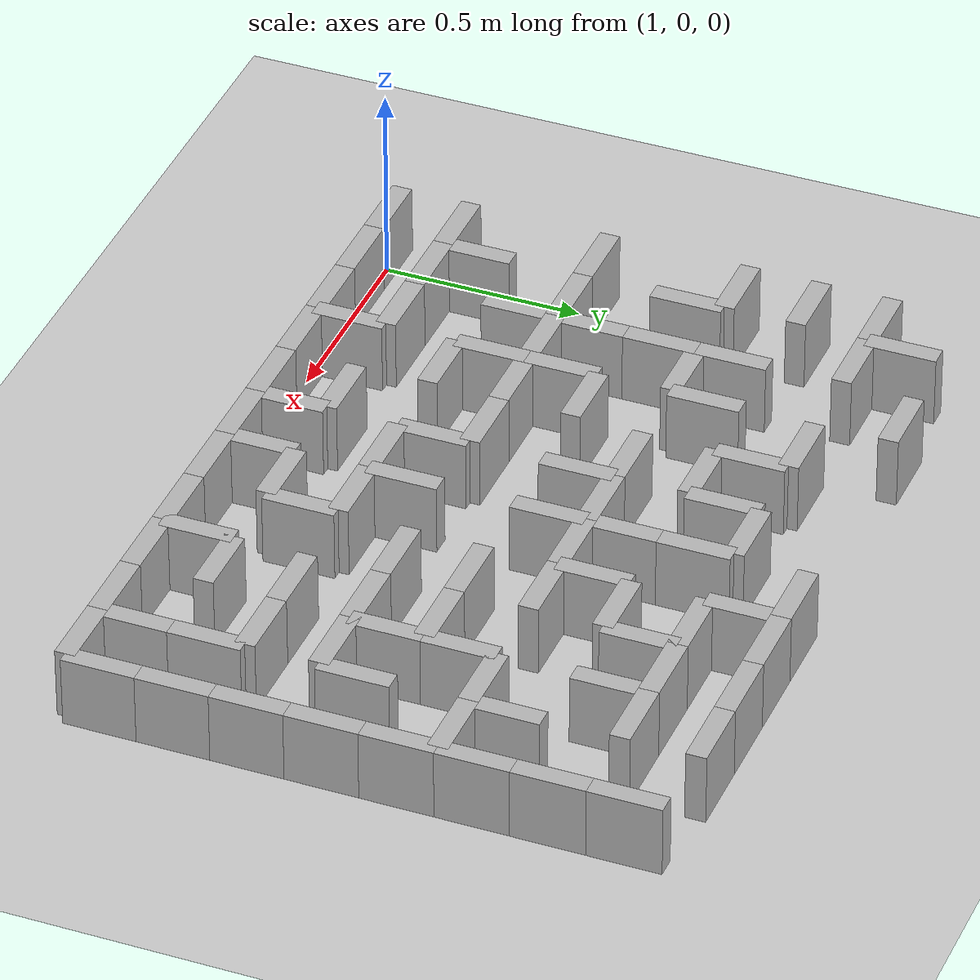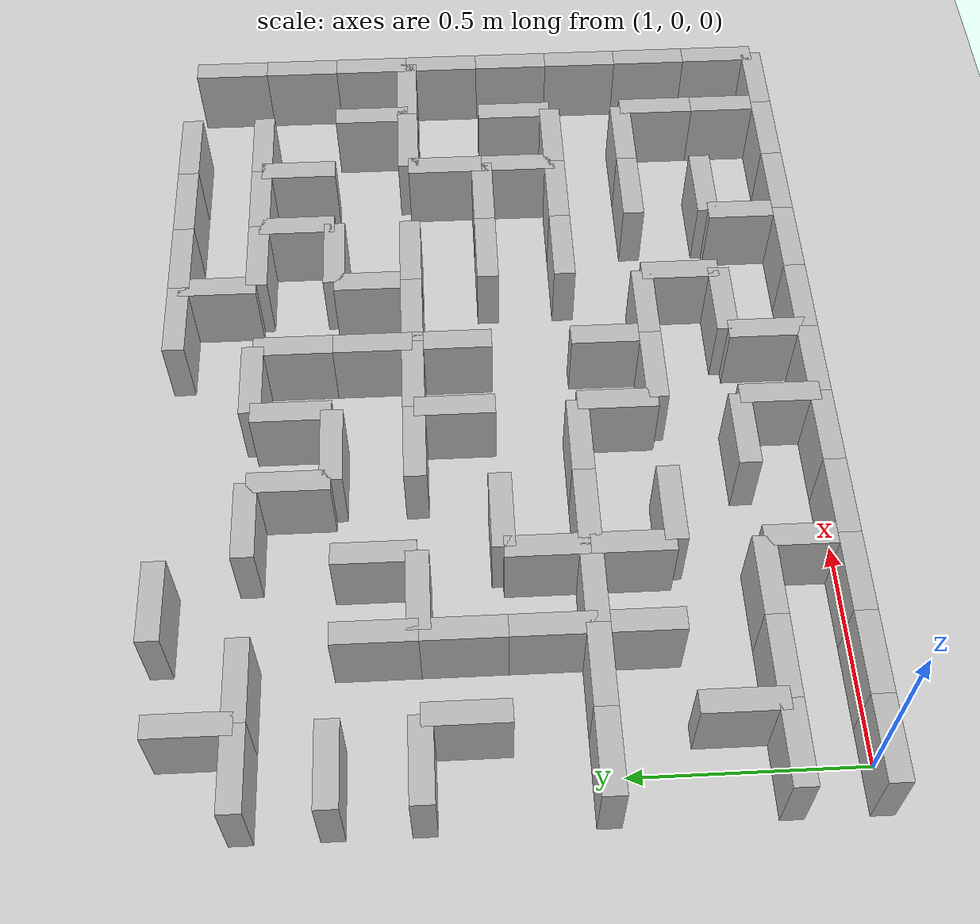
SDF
<sdf version="1.6">
 <world name="default">
  <model name="ground_plane">
   <static>1</static>
   <link name="link">
    <collision name="collision">
     <geometry><plane><normal>0 0 1</normal><size>100 100</size></plane></geometry>
     <surface><friction><ode><mu>100</mu><mu2>50</mu2></ode></friction></surface>
    </collision>
    <visual name="visual">
     <cast_shadows>0</cast_shadows>
     <geometry><plane><normal>0 0 1</normal><size>100 100</size></plane></geometry>
     <material>
      <script><uri>file://media/materials/scripts/gazebo.material</uri><name>Gazebo/Grey</name></script>
     </material>
    </visual>
   </link>
  </model>
  <model name="labyrinth_wall11">
   <pose>0.990000 0.000000 0.09 0 0 0.000000</pose>
   <link name="link">
    <inertial><mass>3.0</mass></inertial>
    <collision name="collision"><geometry><box><size>0.180 0.050 0.180</size></box></geometry></collision>
    <visual name="visual"><geometry><box><size>0.180 0.050 0.180</size></box></geometry></visual>
   </link>
   <static>true</static>
  </model>
  <model name="labyrinth_wall13">
   <pose>1.170000 0.000000 0.09 0 0 0.000000</pose>
   <link name="link">
    <inertial><mass>3.0</mass></inertial>
    <collision name="collision"><geometry><box><size>0.180 0.050 0.180</size></box></geometry></collision>
    <visual name="visual"><geometry><box><size>0.180 0.050 0.180</size></box></geometry></visual>
   </link>
   <static>true</static>
  </model>
  <model name="labyrinth_wall15">
   <pose>1.350000 0.000000 0.09 0 0 0.000000</pose>
   <link name="link">
    <inertial><mass>3.0</mass></inertial>
    <collision name="collision"><geometry><box><size>0.180 0.050 0.180</size></box></geometry></collision>
    <visual name="visual"><geometry><box><size>0.180 0.050 0.180</size></box></geometry></visual>
   </link>
   <static>true</static>
  </model>
  <model name="labyrinth_wall16">
   <pose>1.440000 0.090000 0.09 0 0 1.570796</pose>
   <link name="link">
    <inertial><mass>3.0</mass></inertial>
    <collision name="collision"><geometry><box><size>0.180 0.050 0.180</size></box></geometry></collision>
    <visual name="visual"><geometry><box><size>0.180 0.050 0.180</size></box></geometry></visual>
   </link>
   <static>true</static>
  </model>
  <model name="labyrinth_wall17">
   <pose>1.530000 0.000000 0.09 0 0 0.000000</pose>
   <link name="link">
    <inertial><mass>3.0</mass></inertial>
    <collision name="collision"><geometry><box><size>0.180 0.050 0.180</size></box></geometry></collision>
    <visual name="visual"><geometry><box><size>0.180 0.050 0.180</size></box></geometry></visual>
   </link>
   <static>true</static>
  </model>
  <model name="labyrinth_wall19">
   <pose>1.710000 0.000000 0.09 0 0 0.000000</pose>
   <link name="link">
    <inertial><mass>3.0</mass></inertial>
    <collision name="collision"><geometry><box><size>0.180 0.050 0.180</size></box></geometry></collision>
    <visual name="visual"><geometry><box><size>0.180 0.050 0.180</size></box></geometry></visual>
   </link>
   <static>true</static>
  </model>
  <model name="labyrinth_wall20">
   <pose>1.800000 0.090000 0.09 0 0 1.570796</pose>
   <link name="link">
    <inertial><mass>3.0</mass></inertial>
    <collision name="collision"><geometry><box><size>0.180 0.050 0.180</size></box></geometry></collision>
    <visual name="visual"><geometry><box><size>0.180 0.050 0.180</size></box></geometry></visual>
   </link>
   <static>true</static>
  </model>
  <model name="labyrinth_wall21">
   <pose>1.890000 0.000000 0.09 0 0 0.000000</pose>
   <link name="link">
    <inertial><mass>3.0</mass></inertial>
    <collision name="collision"><geometry><box><size>0.180 0.050 0.180</size></box></geometry></collision>
    <visual name="visual"><geometry><box><size>0.180 0.050 0.180</size></box></geometry></visual>
   </link>
   <static>true</static>
  </model>
  <model name="labyrinth_wall22">
   <pose>1.980000 0.090000 0.09 0 0 1.570796</pose>
   <link name="link">
    <inertial><mass>3.0</mass></inertial>
    <collision name="collision"><geometry><box><size>0.180 0.050 0.180</size></box></geometry></collision>
    <visual name="visual"><geometry><box><size>0.180 0.050 0.180</size></box></geometry></visual>
   </link>
   <static>true</static>
  </model>
  <model name="labyrinth_wall23">
   <pose>2.070000 0.000000 0.09 0 0 0.000000</pose>
   <link name="link">
    <inertial><mass>3.0</mass></inertial>
    <collision name="collision"><geometry><box><size>0.180 0.050 0.180</size></box></geometry></collision>
    <visual name="visual"><geometry><box><size>0.180 0.050 0.180</size></box></geometry></visual>
   </link>
   <static>true</static>
  </model>
  <model name="labyrinth_wall25">
   <pose>2.250000 0.000000 0.09 0 0 0.000000</pose>
   <link name="link">
    <inertial><mass>3.0</mass></inertial>
    <collision name="collision"><geometry><box><size>0.180 0.050 0.180</size></box></geometry></collision>
    <visual name="visual"><geometry><box><size>0.180 0.050 0.180</size></box></geometry></visual>
   </link>
   <static>true</static>
  </model>
  <model name="labyrinth_wall26">
   <pose>2.340000 0.090000 0.09 0 0 1.570796</pose>
   <link name="link">
    <inertial><mass>3.0</mass></inertial>
    <collision name="collision"><geometry><box><size>0.180 0.050 0.180</size></box></geometry></collision>
    <visual name="visual"><geometry><box><size>0.180 0.050 0.180</size></box></geometry></visual>
   </link>
   <static>true</static>
  </model>
  <model name="labyrinth_wall27">
   <pose>2.430000 0.000000 0.09 0 0 0.000000</pose>
   <link name="link">
    <inertial><mass>3.0</mass></inertial>
    <collision name="collision"><geometry><box><size>0.180 0.050 0.180</size></box></geometry></collision>
    <visual name="visual"><geometry><box><size>0.180 0.050 0.180</size></box></geometry></visual>
   </link>
   <static>true</static>
  </model>
  <model name="labyrinth_wall29">
   <pose>2.610000 0.000000 0.09 0 0 0.000000</pose>
   <link name="link">
    <inertial><mass>3.0</mass></inertial>
    <collision name="collision"><geometry><box><size>0.180 0.050 0.180</size></box></geometry></collision>
    <visual name="visual"><geometry><box><size>0.180 0.050 0.180</size></box></geometry></visual>
   </link>
   <static>true</static>
  </model>
  <model name="labyrinth_wall30">
   <pose>2.700000 0.090000 0.09 0 0 1.570796</pose>
   <link name="link">
    <inertial><mass>3.0</mass></inertial>
    <collision name="collision"><geometry><box><size>0.180 0.050 0.180</size></box></geometry></collision>
    <visual name="visual"><geometry><box><size>0.180 0.050 0.180</size></box></geometry></visual>
   </link>
   <static>true</static>
  </model>
  <model name="labyrinth_wall31">
   <pose>2.790000 0.000000 0.09 0 0 0.000000</pose>
   <link name="link">
    <inertial><mass>3.0</mass></inertial>
    <collision name="collision"><geometry><box><size>0.180 0.050 0.180</size></box></geometry></collision>
    <visual name="visual"><geometry><box><size>0.180 0.050 0.180</size></box></geometry></visual>
   </link>
   <static>true</static>
  </model>
  <model name="labyrinth_wall32">
   <pose>2.880000 0.090000 0.09 0 0 1.570796</pose>
   <link name="link">
    <inertial><mass>3.0</mass></inertial>
    <collision name="collision"><geometry><box><size>0.180 0.050 0.180</size></box></geometry></collision>
    <visual name="visual"><geometry><box><size>0.180 0.050 0.180</size></box></geometry></visual>
   </link>
   <static>true</static>
  </model>
  <model name="labyrinth_wall44">
   <pose>0.990000 0.180000 0.09 0 0 0.000000</pose>
   <link name="link">
    <inertial><mass>3.0</mass></inertial>
    <collision name="collision"><geometry><box><size>0.180 0.050 0.180</size></box></geometry></collision>
    <visual name="visual"><geometry><box><size>0.180 0.050 0.180</size></box></geometry></visual>
   </link>
   <static>true</static>
  </model>
  <model name="labyrinth_wall45">
   <pose>1.080000 0.270000 0.09 0 0 1.570796</pose>
   <link name="link">
    <inertial><mass>3.0</mass></inertial>
    <collision name="collision"><geometry><box><size>0.180 0.050 0.180</size></box></geometry></collision>
    <visual name="visual"><geometry><box><size>0.180 0.050 0.180</size></box></geometry></visual>
   </link>
   <static>true</static>
  </model>
  <model name="labyrinth_wall46">
   <pose>1.170000 0.180000 0.09 0 0 0.000000</pose>
   <link name="link">
    <inertial><mass>3.0</mass></inertial>
    <collision name="collision"><geometry><box><size>0.180 0.050 0.180</size></box></geometry></collision>
    <visual name="visual"><geometry><box><size>0.180 0.050 0.180</size></box></geometry></visual>
   </link>
   <static>true</static>
  </model>
  <model name="labyrinth_wall48">
   <pose>1.350000 0.180000 0.09 0 0 0.000000</pose>
   <link name="link">
    <inertial><mass>3.0</mass></inertial>
    <collision name="collision"><geometry><box><size>0.180 0.050 0.180</size></box></geometry></collision>
    <visual name="visual"><geometry><box><size>0.180 0.050 0.180</size></box></geometry></visual>
   </link>
   <static>true</static>
  </model>
  <model name="labyrinth_wall52">
   <pose>1.710000 0.180000 0.09 0 0 0.000000</pose>
   <link name="link">
    <inertial><mass>3.0</mass></inertial>
    <collision name="collision"><geometry><box><size>0.180 0.050 0.180</size></box></geometry></collision>
    <visual name="visual"><geometry><box><size>0.180 0.050 0.180</size></box></geometry></visual>
   </link>
   <static>true</static>
  </model>
  <model name="labyrinth_wall56">
   <pose>2.070000 0.180000 0.09 0 0 0.000000</pose>
   <link name="link">
    <inertial><mass>3.0</mass></inertial>
    <collision name="collision"><geometry><box><size>0.180 0.050 0.180</size></box></geometry></collision>
    <visual name="visual"><geometry><box><size>0.180 0.050 0.180</size></box></geometry></visual>
   </link>
   <static>true</static>
  </model>
  <model name="labyrinth_wall57">
   <pose>2.160000 0.270000 0.09 0 0 1.570796</pose>
   <link name="link">
    <inertial><mass>3.0</mass></inertial>
    <collision name="collision"><geometry><box><size>0.180 0.050 0.180</size></box></geometry></collision>
    <visual name="visual"><geometry><box><size>0.180 0.050 0.180</size></box></geometry></visual>
   </link>
   <static>true</static>
  </model>
  <model name="labyrinth_wall60">
   <pose>2.430000 0.180000 0.09 0 0 0.000000</pose>
   <link name="link">
    <inertial><mass>3.0</mass></inertial>
    <collision name="collision"><geometry><box><size>0.180 0.050 0.180</size></box></geometry></collision>
    <visual name="visual"><geometry><box><size>0.180 0.050 0.180</size></box></geometry></visual>
   </link>
   <static>true</static>
  </model>
  <model name="labyrinth_wall63">
   <pose>2.700000 0.270000 0.09 0 0 1.570796</pose>
   <link name="link">
    <inertial><mass>3.0</mass></inertial>
    <collision name="collision"><geometry><box><size>0.180 0.050 0.180</size></box></geometry></collision>
    <visual name="visual"><geometry><box><size>0.180 0.050 0.180</size></box></geometry></visual>
   </link>
   <static>true</static>
  </model>
  <model name="labyrinth_wall65">
   <pose>2.880000 0.270000 0.09 0 0 1.570796</pose>
   <link name="link">
    <inertial><mass>3.0</mass></inertial>
    <collision name="collision"><geometry><box><size>0.180 0.050 0.180</size></box></geometry></collision>
    <visual name="visual"><geometry><box><size>0.180 0.050 0.180</size></box></geometry></visual>
   </link>
   <static>true</static>
  </model>
  <model name="labyrinth_wall80">
   <pose>1.260000 0.450000 0.09 0 0 1.570796</pose>
   <link name="link">
    <inertial><mass>3.0</mass></inertial>
    <collision name="collision"><geometry><box><size>0.180 0.050 0.180</size></box></geometry></collision>
    <visual name="visual"><geometry><box><size>0.180 0.050 0.180</size></box></geometry></visual>
   </link>
   <static>true</static>
  </model>
  <model name="labyrinth_wall82">
   <pose>1.440000 0.450000 0.09 0 0 1.570796</pose>
   <link name="link">
    <inertial><mass>3.0</mass></inertial>
    <collision name="collision"><geometry><box><size>0.180 0.050 0.180</size></box></geometry></collision>
    <visual name="visual"><geometry><box><size>0.180 0.050 0.180</size></box></geometry></visual>
   </link>
   <static>true</static>
  </model>
  <model name="labyrinth_wall83">
   <pose>1.530000 0.360000 0.09 0 0 0.000000</pose>
   <link name="link">
    <inertial><mass>3.0</mass></inertial>
    <collision name="collision"><geometry><box><size>0.180 0.050 0.180</size></box></geometry></collision>
    <visual name="visual"><geometry><box><size>0.180 0.050 0.180</size></box></geometry></visual>
   </link>
   <static>true</static>
  </model>
  <model name="labyrinth_wall86">
   <pose>1.800000 0.450000 0.09 0 0 1.570796</pose>
   <link name="link">
    <inertial><mass>3.0</mass></inertial>
    <collision name="collision"><geometry><box><size>0.180 0.050 0.180</size></box></geometry></collision>
    <visual name="visual"><geometry><box><size>0.180 0.050 0.180</size></box></geometry></visual>
   </link>
   <static>true</static>
  </model>
  <model name="labyrinth_wall87">
   <pose>1.890000 0.360000 0.09 0 0 0.000000</pose>
   <link name="link">
    <inertial><mass>3.0</mass></inertial>
    <collision name="collision"><geometry><box><size>0.180 0.050 0.180</size></box></geometry></collision>
    <visual name="visual"><geometry><box><size>0.180 0.050 0.180</size></box></geometry></visual>
   </link>
   <static>true</static>
  </model>
  <model name="labyrinth_wall88">
   <pose>1.980000 0.450000 0.09 0 0 1.570796</pose>
   <link name="link">
    <inertial><mass>3.0</mass></inertial>
    <collision name="collision"><geometry><box><size>0.180 0.050 0.180</size></box></geometry></collision>
    <visual name="visual"><geometry><box><size>0.180 0.050 0.180</size></box></geometry></visual>
   </link>
   <static>true</static>
  </model>
  <model name="labyrinth_wall89">
   <pose>2.070000 0.360000 0.09 0 0 0.000000</pose>
   <link name="link">
    <inertial><mass>3.0</mass></inertial>
    <collision name="collision"><geometry><box><size>0.180 0.050 0.180</size></box></geometry></collision>
    <visual name="visual"><geometry><box><size>0.180 0.050 0.180</size></box></geometry></visual>
   </link>
   <static>true</static>
  </model>
  <model name="labyrinth_wall93">
   <pose>2.430000 0.360000 0.09 0 0 0.000000</pose>
   <link name="link">
    <inertial><mass>3.0</mass></inertial>
    <collision name="collision"><geometry><box><size>0.180 0.050 0.180</size></box></geometry></collision>
    <visual name="visual"><geometry><box><size>0.180 0.050 0.180</size></box></geometry></visual>
   </link>
   <static>true</static>
  </model>
  <model name="labyrinth_wall95">
   <pose>2.610000 0.360000 0.09 0 0 0.000000</pose>
   <link name="link">
    <inertial><mass>3.0</mass></inertial>
    <collision name="collision"><geometry><box><size>0.180 0.050 0.180</size></box></geometry></collision>
    <visual name="visual"><geometry><box><size>0.180 0.050 0.180</size></box></geometry></visual>
   </link>
   <static>true</static>
  </model>
  <model name="labyrinth_wall98">
   <pose>2.880000 0.450000 0.09 0 0 1.570796</pose>
   <link name="link">
    <inertial><mass>3.0</mass></inertial>
    <collision name="collision"><geometry><box><size>0.180 0.050 0.180</size></box></geometry></collision>
    <visual name="visual"><geometry><box><size>0.180 0.050 0.180</size></box></geometry></visual>
   </link>
   <static>true</static>
  </model>
  <model name="labyrinth_wall110">
   <pose>0.990000 0.540000 0.09 0 0 0.000000</pose>
   <link name="link">
    <inertial><mass>3.0</mass></inertial>
    <collision name="collision"><geometry><box><size>0.180 0.050 0.180</size></box></geometry></collision>
    <visual name="visual"><geometry><box><size>0.180 0.050 0.180</size></box></geometry></visual>
   </link>
   <static>true</static>
  </model>
  <model name="labyrinth_wall112">
   <pose>1.170000 0.540000 0.09 0 0 0.000000</pose>
   <link name="link">
    <inertial><mass>3.0</mass></inertial>
    <collision name="collision"><geometry><box><size>0.180 0.050 0.180</size></box></geometry></collision>
    <visual name="visual"><geometry><box><size>0.180 0.050 0.180</size></box></geometry></visual>
   </link>
   <static>true</static>
  </model>
  <model name="labyrinth_wall113">
   <pose>1.260000 0.630000 0.09 0 0 1.570796</pose>
   <link name="link">
    <inertial><mass>3.0</mass></inertial>
    <collision name="collision"><geometry><box><size>0.180 0.050 0.180</size></box></geometry></collision>
    <visual name="visual"><geometry><box><size>0.180 0.050 0.180</size></box></geometry></visual>
   </link>
   <static>true</static>
  </model>
  <model name="labyrinth_wall114">
   <pose>1.350000 0.540000 0.09 0 0 0.000000</pose>
   <link name="link">
    <inertial><mass>3.0</mass></inertial>
    <collision name="collision"><geometry><box><size>0.180 0.050 0.180</size></box></geometry></collision>
    <visual name="visual"><geometry><box><size>0.180 0.050 0.180</size></box></geometry></visual>
   </link>
   <static>true</static>
  </model>
  <model name="labyrinth_wall115">
   <pose>1.440000 0.630000 0.09 0 0 1.570796</pose>
   <link name="link">
    <inertial><mass>3.0</mass></inertial>
    <collision name="collision"><geometry><box><size>0.180 0.050 0.180</size></box></geometry></collision>
    <visual name="visual"><geometry><box><size>0.180 0.050 0.180</size></box></geometry></visual>
   </link>
   <static>true</static>
  </model>
  <model name="labyrinth_wall116">
   <pose>1.530000 0.540000 0.09 0 0 0.000000</pose>
   <link name="link">
    <inertial><mass>3.0</mass></inertial>
    <collision name="collision"><geometry><box><size>0.180 0.050 0.180</size></box></geometry></collision>
    <visual name="visual"><geometry><box><size>0.180 0.050 0.180</size></box></geometry></visual>
   </link>
   <static>true</static>
  </model>
  <model name="labyrinth_wall118">
   <pose>1.710000 0.540000 0.09 0 0 0.000000</pose>
   <link name="link">
    <inertial><mass>3.0</mass></inertial>
    <collision name="collision"><geometry><box><size>0.180 0.050 0.180</size></box></geometry></collision>
    <visual name="visual"><geometry><box><size>0.180 0.050 0.180</size></box></geometry></visual>
   </link>
   <static>true</static>
  </model>
  <model name="labyrinth_wall124">
   <pose>2.250000 0.540000 0.09 0 0 0.000000</pose>
   <link name="link">
    <inertial><mass>3.0</mass></inertial>
    <collision name="collision"><geometry><box><size>0.180 0.050 0.180</size></box></geometry></collision>
    <visual name="visual"><geometry><box><size>0.180 0.050 0.180</size></box></geometry></visual>
   </link>
   <static>true</static>
  </model>
  <model name="labyrinth_wall126">
   <pose>2.430000 0.540000 0.09 0 0 0.000000</pose>
   <link name="link">
    <inertial><mass>3.0</mass></inertial>
    <collision name="collision"><geometry><box><size>0.180 0.050 0.180</size></box></geometry></collision>
    <visual name="visual"><geometry><box><size>0.180 0.050 0.180</size></box></geometry></visual>
   </link>
   <static>true</static>
  </model>
  <model name="labyrinth_wall127">
   <pose>2.520000 0.630000 0.09 0 0 1.570796</pose>
   <link name="link">
    <inertial><mass>3.0</mass></inertial>
    <collision name="collision"><geometry><box><size>0.180 0.050 0.180</size></box></geometry></collision>
    <visual name="visual"><geometry><box><size>0.180 0.050 0.180</size></box></geometry></visual>
   </link>
   <static>true</static>
  </model>
  <model name="labyrinth_wall128">
   <pose>2.610000 0.540000 0.09 0 0 0.000000</pose>
   <link name="link">
    <inertial><mass>3.0</mass></inertial>
    <collision name="collision"><geometry><box><size>0.180 0.050 0.180</size></box></geometry></collision>
    <visual name="visual"><geometry><box><size>0.180 0.050 0.180</size></box></geometry></visual>
   </link>
   <static>true</static>
  </model>
  <model name="labyrinth_wall129">
   <pose>2.700000 0.630000 0.09 0 0 1.570796</pose>
   <link name="link">
    <inertial><mass>3.0</mass></inertial>
    <collision name="collision"><geometry><box><size>0.180 0.050 0.180</size></box></geometry></collision>
    <visual name="visual"><geometry><box><size>0.180 0.050 0.180</size></box></geometry></visual>
   </link>
   <static>true</static>
  </model>
  <model name="labyrinth_wall131">
   <pose>2.880000 0.630000 0.09 0 0 1.570796</pose>
   <link name="link">
    <inertial><mass>3.0</mass></inertial>
    <collision name="collision"><geometry><box><size>0.180 0.050 0.180</size></box></geometry></collision>
    <visual name="visual"><geometry><box><size>0.180 0.050 0.180</size></box></geometry></visual>
   </link>
   <static>true</static>
  </model>
  <model name="labyrinth_wall144">
   <pose>1.080000 0.810000 0.09 0 0 1.570796</pose>
   <link name="link">
    <inertial><mass>3.0</mass></inertial>
    <collision name="collision"><geometry><box><size>0.180 0.050 0.180</size></box></geometry></collision>
    <visual name="visual"><geometry><box><size>0.180 0.050 0.180</size></box></geometry></visual>
   </link>
   <static>true</static>
  </model>
  <model name="labyrinth_wall146">
   <pose>1.260000 0.810000 0.09 0 0 1.570796</pose>
   <link name="link">
    <inertial><mass>3.0</mass></inertial>
    <collision name="collision"><geometry><box><size>0.180 0.050 0.180</size></box></geometry></collision>
    <visual name="visual"><geometry><box><size>0.180 0.050 0.180</size></box></geometry></visual>
   </link>
   <static>true</static>
  </model>
  <model name="labyrinth_wall149">
   <pose>1.530000 0.720000 0.09 0 0 0.000000</pose>
   <link name="link">
    <inertial><mass>3.0</mass></inertial>
    <collision name="collision"><geometry><box><size>0.180 0.050 0.180</size></box></geometry></collision>
    <visual name="visual"><geometry><box><size>0.180 0.050 0.180</size></box></geometry></visual>
   </link>
   <static>true</static>
  </model>
  <model name="labyrinth_wall152">
   <pose>1.800000 0.810000 0.09 0 0 1.570796</pose>
   <link name="link">
    <inertial><mass>3.0</mass></inertial>
    <collision name="collision"><geometry><box><size>0.180 0.050 0.180</size></box></geometry></collision>
    <visual name="visual"><geometry><box><size>0.180 0.050 0.180</size></box></geometry></visual>
   </link>
   <static>true</static>
  </model>
  <model name="labyrinth_wall154">
   <pose>1.980000 0.810000 0.09 0 0 1.570796</pose>
   <link name="link">
    <inertial><mass>3.0</mass></inertial>
    <collision name="collision"><geometry><box><size>0.180 0.050 0.180</size></box></geometry></collision>
    <visual name="visual"><geometry><box><size>0.180 0.050 0.180</size></box></geometry></visual>
   </link>
   <static>true</static>
  </model>
  <model name="labyrinth_wall157">
   <pose>2.250000 0.720000 0.09 0 0 0.000000</pose>
   <link name="link">
    <inertial><mass>3.0</mass></inertial>
    <collision name="collision"><geometry><box><size>0.180 0.050 0.180</size></box></geometry></collision>
    <visual name="visual"><geometry><box><size>0.180 0.050 0.180</size></box></geometry></visual>
   </link>
   <static>true</static>
  </model>
  <model name="labyrinth_wall159">
   <pose>2.430000 0.720000 0.09 0 0 0.000000</pose>
   <link name="link">
    <inertial><mass>3.0</mass></inertial>
    <collision name="collision"><geometry><box><size>0.180 0.050 0.180</size></box></geometry></collision>
    <visual name="visual"><geometry><box><size>0.180 0.050 0.180</size></box></geometry></visual>
   </link>
   <static>true</static>
  </model>
  <model name="labyrinth_wall160">
   <pose>2.520000 0.810000 0.09 0 0 1.570796</pose>
   <link name="link">
    <inertial><mass>3.0</mass></inertial>
    <collision name="collision"><geometry><box><size>0.180 0.050 0.180</size></box></geometry></collision>
    <visual name="visual"><geometry><box><size>0.180 0.050 0.180</size></box></geometry></visual>
   </link>
   <static>true</static>
  </model>
  <model name="labyrinth_wall164">
   <pose>2.880000 0.810000 0.09 0 0 1.570796</pose>
   <link name="link">
    <inertial><mass>3.0</mass></inertial>
    <collision name="collision"><geometry><box><size>0.180 0.050 0.180</size></box></geometry></collision>
    <visual name="visual"><geometry><box><size>0.180 0.050 0.180</size></box></geometry></visual>
   </link>
   <static>true</static>
  </model>
  <model name="labyrinth_wall176">
   <pose>0.990000 0.900000 0.09 0 0 0.000000</pose>
   <link name="link">
    <inertial><mass>3.0</mass></inertial>
    <collision name="collision"><geometry><box><size>0.180 0.050 0.180</size></box></geometry></collision>
    <visual name="visual"><geometry><box><size>0.180 0.050 0.180</size></box></geometry></visual>
   </link>
   <static>true</static>
  </model>
  <model name="labyrinth_wall179">
   <pose>1.260000 0.990000 0.09 0 0 1.570796</pose>
   <link name="link">
    <inertial><mass>3.0</mass></inertial>
    <collision name="collision"><geometry><box><size>0.180 0.050 0.180</size></box></geometry></collision>
    <visual name="visual"><geometry><box><size>0.180 0.050 0.180</size></box></geometry></visual>
   </link>
   <static>true</static>
  </model>
  <model name="labyrinth_wall180">
   <pose>1.350000 0.900000 0.09 0 0 0.000000</pose>
   <link name="link">
    <inertial><mass>3.0</mass></inertial>
    <collision name="collision"><geometry><box><size>0.180 0.050 0.180</size></box></geometry></collision>
    <visual name="visual"><geometry><box><size>0.180 0.050 0.180</size></box></geometry></visual>
   </link>
   <static>true</static>
  </model>
  <model name="labyrinth_wall181">
   <pose>1.440000 0.990000 0.09 0 0 1.570796</pose>
   <link name="link">
    <inertial><mass>3.0</mass></inertial>
    <collision name="collision"><geometry><box><size>0.180 0.050 0.180</size></box></geometry></collision>
    <visual name="visual"><geometry><box><size>0.180 0.050 0.180</size></box></geometry></visual>
   </link>
   <static>true</static>
  </model>
  <model name="labyrinth_wall184">
   <pose>1.710000 0.900000 0.09 0 0 0.000000</pose>
   <link name="link">
    <inertial><mass>3.0</mass></inertial>
    <collision name="collision"><geometry><box><size>0.180 0.050 0.180</size></box></geometry></collision>
    <visual name="visual"><geometry><box><size>0.180 0.050 0.180</size></box></geometry></visual>
   </link>
   <static>true</static>
  </model>
  <model name="labyrinth_wall186">
   <pose>1.890000 0.900000 0.09 0 0 0.000000</pose>
   <link name="link">
    <inertial><mass>3.0</mass></inertial>
    <collision name="collision"><geometry><box><size>0.180 0.050 0.180</size></box></geometry></collision>
    <visual name="visual"><geometry><box><size>0.180 0.050 0.180</size></box></geometry></visual>
   </link>
   <static>true</static>
  </model>
  <model name="labyrinth_wall187">
   <pose>1.980000 0.990000 0.09 0 0 1.570796</pose>
   <link name="link">
    <inertial><mass>3.0</mass></inertial>
    <collision name="collision"><geometry><box><size>0.180 0.050 0.180</size></box></geometry></collision>
    <visual name="visual"><geometry><box><size>0.180 0.050 0.180</size></box></geometry></visual>
   </link>
   <static>true</static>
  </model>
  <model name="labyrinth_wall188">
   <pose>2.070000 0.900000 0.09 0 0 0.000000</pose>
   <link name="link">
    <inertial><mass>3.0</mass></inertial>
    <collision name="collision"><geometry><box><size>0.180 0.050 0.180</size></box></geometry></collision>
    <visual name="visual"><geometry><box><size>0.180 0.050 0.180</size></box></geometry></visual>
   </link>
   <static>true</static>
  </model>
  <model name="labyrinth_wall189">
   <pose>2.160000 0.990000 0.09 0 0 1.570796</pose>
   <link name="link">
    <inertial><mass>3.0</mass></inertial>
    <collision name="collision"><geometry><box><size>0.180 0.050 0.180</size></box></geometry></collision>
    <visual name="visual"><geometry><box><size>0.180 0.050 0.180</size></box></geometry></visual>
   </link>
   <static>true</static>
  </model>
  <model name="labyrinth_wall190">
   <pose>2.250000 0.900000 0.09 0 0 0.000000</pose>
   <link name="link">
    <inertial><mass>3.0</mass></inertial>
    <collision name="collision"><geometry><box><size>0.180 0.050 0.180</size></box></geometry></collision>
    <visual name="visual"><geometry><box><size>0.180 0.050 0.180</size></box></geometry></visual>
   </link>
   <static>true</static>
  </model>
  <model name="labyrinth_wall194">
   <pose>2.610000 0.900000 0.09 0 0 0.000000</pose>
   <link name="link">
    <inertial><mass>3.0</mass></inertial>
    <collision name="collision"><geometry><box><size>0.180 0.050 0.180</size></box></geometry></collision>
    <visual name="visual"><geometry><box><size>0.180 0.050 0.180</size></box></geometry></visual>
   </link>
   <static>true</static>
  </model>
  <model name="labyrinth_wall195">
   <pose>2.700000 0.990000 0.09 0 0 1.570796</pose>
   <link name="link">
    <inertial><mass>3.0</mass></inertial>
    <collision name="collision"><geometry><box><size>0.180 0.050 0.180</size></box></geometry></collision>
    <visual name="visual"><geometry><box><size>0.180 0.050 0.180</size></box></geometry></visual>
   </link>
   <static>true</static>
  </model>
  <model name="labyrinth_wall196">
   <pose>2.790000 0.900000 0.09 0 0 0.000000</pose>
   <link name="link">
    <inertial><mass>3.0</mass></inertial>
    <collision name="collision"><geometry><box><size>0.180 0.050 0.180</size></box></geometry></collision>
    <visual name="visual"><geometry><box><size>0.180 0.050 0.180</size></box></geometry></visual>
   </link>
   <static>true</static>
  </model>
  <model name="labyrinth_wall197">
   <pose>2.880000 0.990000 0.09 0 0 1.570796</pose>
   <link name="link">
    <inertial><mass>3.0</mass></inertial>
    <collision name="collision"><geometry><box><size>0.180 0.050 0.180</size></box></geometry></collision>
    <visual name="visual"><geometry><box><size>0.180 0.050 0.180</size></box></geometry></visual>
   </link>
   <static>true</static>
  </model>
  <model name="labyrinth_wall209">
   <pose>0.990000 1.080000 0.09 0 0 0.000000</pose>
   <link name="link">
    <inertial><mass>3.0</mass></inertial>
    <collision name="collision"><geometry><box><size>0.180 0.050 0.180</size></box></geometry></collision>
    <visual name="visual"><geometry><box><size>0.180 0.050 0.180</size></box></geometry></visual>
   </link>
   <static>true</static>
  </model>
  <model name="labyrinth_wall216">
   <pose>1.620000 1.170000 0.09 0 0 1.570796</pose>
   <link name="link">
    <inertial><mass>3.0</mass></inertial>
    <collision name="collision"><geometry><box><size>0.180 0.050 0.180</size></box></geometry></collision>
    <visual name="visual"><geometry><box><size>0.180 0.050 0.180</size></box></geometry></visual>
   </link>
   <static>true</static>
  </model>
  <model name="labyrinth_wall217">
   <pose>1.710000 1.080000 0.09 0 0 0.000000</pose>
   <link name="link">
    <inertial><mass>3.0</mass></inertial>
    <collision name="collision"><geometry><box><size>0.180 0.050 0.180</size></box></geometry></collision>
    <visual name="visual"><geometry><box><size>0.180 0.050 0.180</size></box></geometry></visual>
   </link>
   <static>true</static>
  </model>
  <model name="labyrinth_wall218">
   <pose>1.800000 1.170000 0.09 0 0 1.570796</pose>
   <link name="link">
    <inertial><mass>3.0</mass></inertial>
    <collision name="collision"><geometry><box><size>0.180 0.050 0.180</size></box></geometry></collision>
    <visual name="visual"><geometry><box><size>0.180 0.050 0.180</size></box></geometry></visual>
   </link>
   <static>true</static>
  </model>
  <model name="labyrinth_wall220">
   <pose>1.980000 1.170000 0.09 0 0 1.570796</pose>
   <link name="link">
    <inertial><mass>3.0</mass></inertial>
    <collision name="collision"><geometry><box><size>0.180 0.050 0.180</size></box></geometry></collision>
    <visual name="visual"><geometry><box><size>0.180 0.050 0.180</size></box></geometry></visual>
   </link>
   <static>true</static>
  </model>
  <model name="labyrinth_wall223">
   <pose>2.250000 1.080000 0.09 0 0 0.000000</pose>
   <link name="link">
    <inertial><mass>3.0</mass></inertial>
    <collision name="collision"><geometry><box><size>0.180 0.050 0.180</size></box></geometry></collision>
    <visual name="visual"><geometry><box><size>0.180 0.050 0.180</size></box></geometry></visual>
   </link>
   <static>true</static>
  </model>
  <model name="labyrinth_wall224">
   <pose>2.340000 1.170000 0.09 0 0 1.570796</pose>
   <link name="link">
    <inertial><mass>3.0</mass></inertial>
    <collision name="collision"><geometry><box><size>0.180 0.050 0.180</size></box></geometry></collision>
    <visual name="visual"><geometry><box><size>0.180 0.050 0.180</size></box></geometry></visual>
   </link>
   <static>true</static>
  </model>
  <model name="labyrinth_wall226">
   <pose>2.520000 1.170000 0.09 0 0 1.570796</pose>
   <link name="link">
    <inertial><mass>3.0</mass></inertial>
    <collision name="collision"><geometry><box><size>0.180 0.050 0.180</size></box></geometry></collision>
    <visual name="visual"><geometry><box><size>0.180 0.050 0.180</size></box></geometry></visual>
   </link>
   <static>true</static>
  </model>
  <model name="labyrinth_wall230">
   <pose>2.880000 1.170000 0.09 0 0 1.570796</pose>
   <link name="link">
    <inertial><mass>3.0</mass></inertial>
    <collision name="collision"><geometry><box><size>0.180 0.050 0.180</size></box></geometry></collision>
    <visual name="visual"><geometry><box><size>0.180 0.050 0.180</size></box></geometry></visual>
   </link>
   <static>true</static>
  </model>
  <model name="labyrinth_wall242">
   <pose>0.990000 1.260000 0.09 0 0 0.000000</pose>
   <link name="link">
    <inertial><mass>3.0</mass></inertial>
    <collision name="collision"><geometry><box><size>0.180 0.050 0.180</size></box></geometry></collision>
    <visual name="visual"><geometry><box><size>0.180 0.050 0.180</size></box></geometry></visual>
   </link>
   <static>true</static>
  </model>
  <model name="labyrinth_wall243">
   <pose>1.080000 1.350000 0.09 0 0 1.570796</pose>
   <link name="link">
    <inertial><mass>3.0</mass></inertial>
    <collision name="collision"><geometry><box><size>0.180 0.050 0.180</size></box></geometry></collision>
    <visual name="visual"><geometry><box><size>0.180 0.050 0.180</size></box></geometry></visual>
   </link>
   <static>true</static>
  </model>
  <model name="labyrinth_wall244">
   <pose>1.170000 1.260000 0.09 0 0 0.000000</pose>
   <link name="link">
    <inertial><mass>3.0</mass></inertial>
    <collision name="collision"><geometry><box><size>0.180 0.050 0.180</size></box></geometry></collision>
    <visual name="visual"><geometry><box><size>0.180 0.050 0.180</size></box></geometry></visual>
   </link>
   <static>true</static>
  </model>
  <model name="labyrinth_wall248">
   <pose>1.530000 1.260000 0.09 0 0 0.000000</pose>
   <link name="link">
    <inertial><mass>3.0</mass></inertial>
    <collision name="collision"><geometry><box><size>0.180 0.050 0.180</size></box></geometry></collision>
    <visual name="visual"><geometry><box><size>0.180 0.050 0.180</size></box></geometry></visual>
   </link>
   <static>true</static>
  </model>
  <model name="labyrinth_wall252">
   <pose>1.890000 1.260000 0.09 0 0 0.000000</pose>
   <link name="link">
    <inertial><mass>3.0</mass></inertial>
    <collision name="collision"><geometry><box><size>0.180 0.050 0.180</size></box></geometry></collision>
    <visual name="visual"><geometry><box><size>0.180 0.050 0.180</size></box></geometry></visual>
   </link>
   <static>true</static>
  </model>
  <model name="labyrinth_wall255">
   <pose>2.160000 1.350000 0.09 0 0 1.570796</pose>
   <link name="link">
    <inertial><mass>3.0</mass></inertial>
    <collision name="collision"><geometry><box><size>0.180 0.050 0.180</size></box></geometry></collision>
    <visual name="visual"><geometry><box><size>0.180 0.050 0.180</size></box></geometry></visual>
   </link>
   <static>true</static>
  </model>
  <model name="labyrinth_wall256">
   <pose>2.250000 1.260000 0.09 0 0 0.000000</pose>
   <link name="link">
    <inertial><mass>3.0</mass></inertial>
    <collision name="collision"><geometry><box><size>0.180 0.050 0.180</size></box></geometry></collision>
    <visual name="visual"><geometry><box><size>0.180 0.050 0.180</size></box></geometry></visual>
   </link>
   <static>true</static>
  </model>
  <model name="labyrinth_wall258">
   <pose>2.430000 1.260000 0.09 0 0 0.000000</pose>
   <link name="link">
    <inertial><mass>3.0</mass></inertial>
    <collision name="collision"><geometry><box><size>0.180 0.050 0.180</size></box></geometry></collision>
    <visual name="visual"><geometry><box><size>0.180 0.050 0.180</size></box></geometry></visual>
   </link>
   <static>true</static>
  </model>
  <model name="labyrinth_wall260">
   <pose>2.610000 1.260000 0.09 0 0 0.000000</pose>
   <link name="link">
    <inertial><mass>3.0</mass></inertial>
    <collision name="collision"><geometry><box><size>0.180 0.050 0.180</size></box></geometry></collision>
    <visual name="visual"><geometry><box><size>0.180 0.050 0.180</size></box></geometry></visual>
   </link>
   <static>true</static>
  </model>
  <model name="labyrinth_wall263">
   <pose>2.880000 1.350000 0.09 0 0 1.570796</pose>
   <link name="link">
    <inertial><mass>3.0</mass></inertial>
    <collision name="collision"><geometry><box><size>0.180 0.050 0.180</size></box></geometry></collision>
    <visual name="visual"><geometry><box><size>0.180 0.050 0.180</size></box></geometry></visual>
   </link>
   <static>true</static>
  </model>
  <model name="labyrinth_wall279">
   <pose>1.350000 1.440000 0.09 0 0 0.000000</pose>
   <link name="link">
    <inertial><mass>3.0</mass></inertial>
    <collision name="collision"><geometry><box><size>0.180 0.050 0.180</size></box></geometry></collision>
    <visual name="visual"><geometry><box><size>0.180 0.050 0.180</size></box></geometry></visual>
   </link>
   <static>true</static>
  </model>
  <model name="labyrinth_wall287">
   <pose>2.070000 1.440000 0.09 0 0 0.000000</pose>
   <link name="link">
    <inertial><mass>3.0</mass></inertial>
    <collision name="collision"><geometry><box><size>0.180 0.050 0.180</size></box></geometry></collision>
    <visual name="visual"><geometry><box><size>0.180 0.050 0.180</size></box></geometry></visual>
   </link>
   <static>true</static>
  </model>
  <model name="labyrinth_wall289">
   <pose>2.250000 1.440000 0.09 0 0 0.000000</pose>
   <link name="link">
    <inertial><mass>3.0</mass></inertial>
    <collision name="collision"><geometry><box><size>0.180 0.050 0.180</size></box></geometry></collision>
    <visual name="visual"><geometry><box><size>0.180 0.050 0.180</size></box></geometry></visual>
   </link>
   <static>true</static>
  </model>
  <model name="labyrinth_wall291">
   <pose>2.430000 1.440000 0.09 0 0 0.000000</pose>
   <link name="link">
    <inertial><mass>3.0</mass></inertial>
    <collision name="collision"><geometry><box><size>0.180 0.050 0.180</size></box></geometry></collision>
    <visual name="visual"><geometry><box><size>0.180 0.050 0.180</size></box></geometry></visual>
   </link>
   <static>true</static>
  </model>
  <model name="labyrinth_wall293">
   <pose>2.610000 1.440000 0.09 0 0 0.000000</pose>
   <link name="link">
    <inertial><mass>3.0</mass></inertial>
    <collision name="collision"><geometry><box><size>0.180 0.050 0.180</size></box></geometry></collision>
    <visual name="visual"><geometry><box><size>0.180 0.050 0.180</size></box></geometry></visual>
   </link>
   <static>true</static>
  </model>
 </world>
</sdf>
